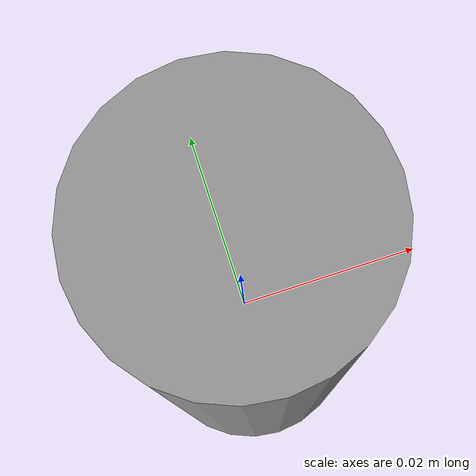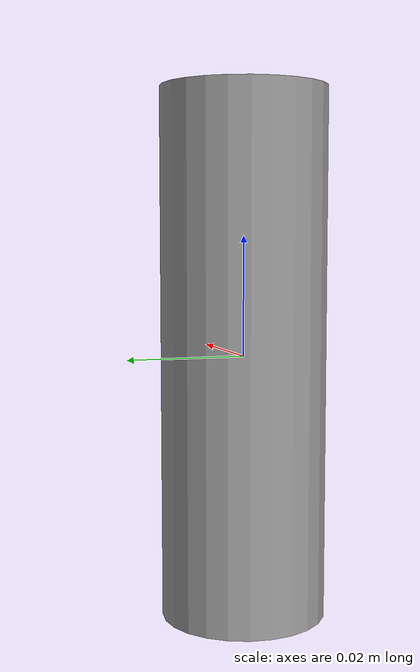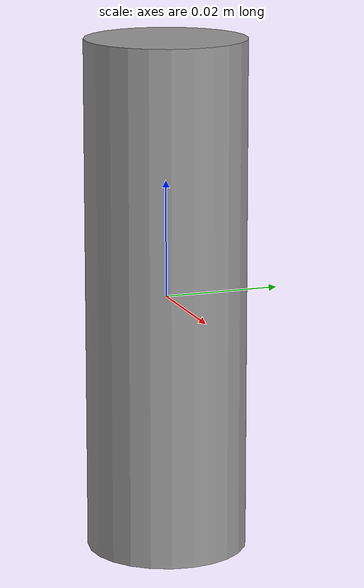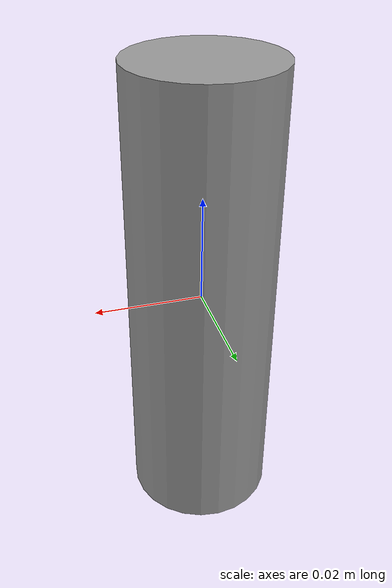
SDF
<?xml version='1.0'?>
<sdf version='1.6'>
  <model name='tube'>
    <link name='link_1'>
      <pose frame=''>-1e-06 1e-06 0 0 -0 0</pose>
      <inertial>
        <mass>6.69482e-05</mass>
        <inertia>
          <ixx>4.65764e-08</ixx>
          <ixy>0</ixy>
          <ixz>0</ixz>
          <iyy>4.65764e-08</iyy>
          <iyz>0</iyz>
          <izz>6.34837e-09</izz>
        </inertia>
        <pose frame=''>0 0 0 0 -0 0</pose>
      </inertial>
      <visual name='visual'>
        <pose frame=''>0 0 0 0 -0 0</pose>
        <geometry>
          <cylinder>
            <radius>0.0137714</radius>
            <length>0.0882018</length>
          </cylinder>
        </geometry>
        <material>
          <lighting>1</lighting>
          <script>
            <uri>file://media/materials/scripts/gazebo.material</uri>
            <name>Gazebo/Grey</name>
          </script>
          <shader type='pixel'/>
          <ambient>0.3 0.3 0.3 1</ambient>
          <diffuse>0.7 0.7 0.7 1</diffuse>
          <specular>0.01 0.01 0.01 1</specular>
          <emissive>0 0 0 1</emissive>
        </material>
        <transparency>0</transparency>
        <cast_shadows>1</cast_shadows>
      </visual>
      <collision name='collision'>
        <laser_retro>0</laser_retro>
        <max_contacts>10</max_contacts>
        <pose frame=''>0 0 0 0 -0 0</pose>
        <geometry>
          <cylinder>
            <radius>0.013771</radius>
            <length>0.088202</length>
          </cylinder>
        </geometry>
        <surface>
          <friction>
            <ode>
              <mu>1</mu>
              <mu2>1</mu2>
              <fdir1>0 0 0</fdir1>
              <slip1>0</slip1>
              <slip2>0</slip2>
            </ode>
            <torsional>
              <coefficient>1</coefficient>
              <patch_radius>0</patch_radius>
              <surface_radius>0</surface_radius>
              <use_patch_radius>1</use_patch_radius>
              <ode>
                <slip>0</slip>
              </ode>
            </torsional>
          </friction>
          <bounce>
            <restitution_coefficient>0</restitution_coefficient>
            <threshold>1e+06</threshold>
          </bounce>
          <contact>
            <collide_without_contact>0</collide_without_contact>
            <collide_without_contact_bitmask>1</collide_without_contact_bitmask>
            <collide_bitmask>1</collide_bitmask>
            <ode>
              <soft_cfm>0</soft_cfm>
              <soft_erp>0.2</soft_erp>
              <kp>1e+13</kp>
              <kd>1</kd>
              <max_vel>0.01</max_vel>
              <min_depth>0</min_depth>
            </ode>
            <bullet>
              <split_impulse>1</split_impulse>
              <split_impulse_penetration_threshold>-0.01</split_impulse_penetration_threshold>
              <soft_cfm>0</soft_cfm>
              <soft_erp>0.2</soft_erp>
              <kp>1e+13</kp>
              <kd>1</kd>
            </bullet>
          </contact>
        </surface>
      </collision>
    </link>
    <static>0</static>
    <allow_auto_disable>1</allow_auto_disable>
  </model>
</sdf>
